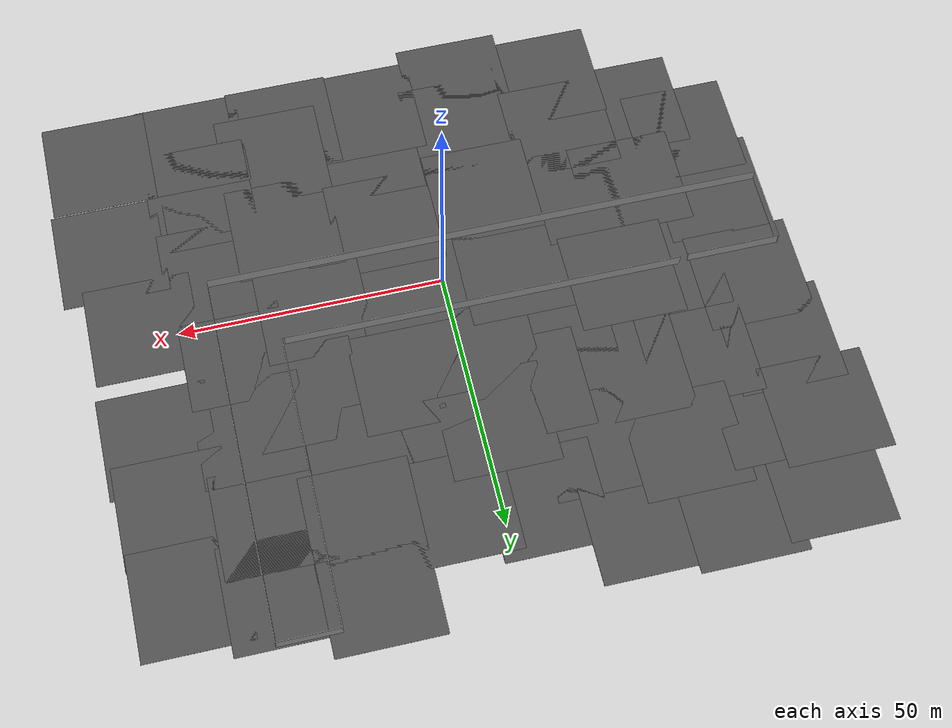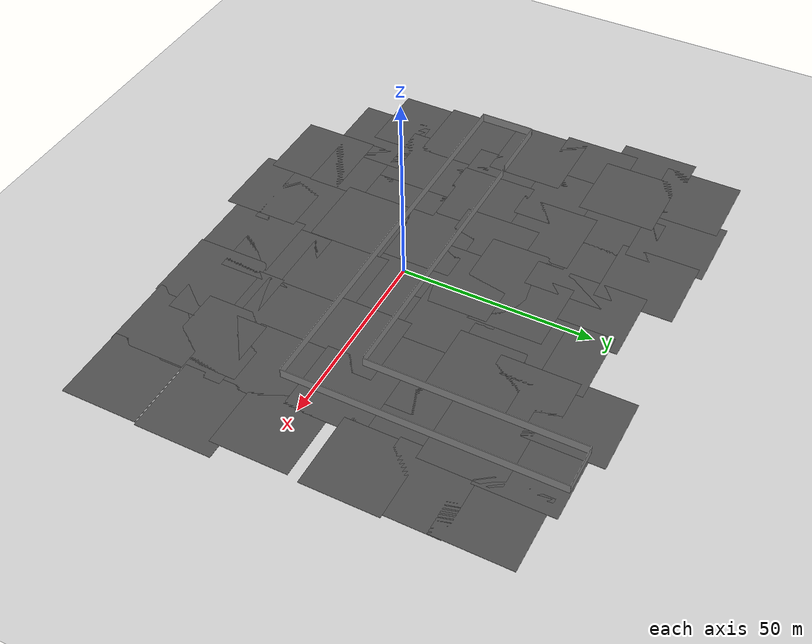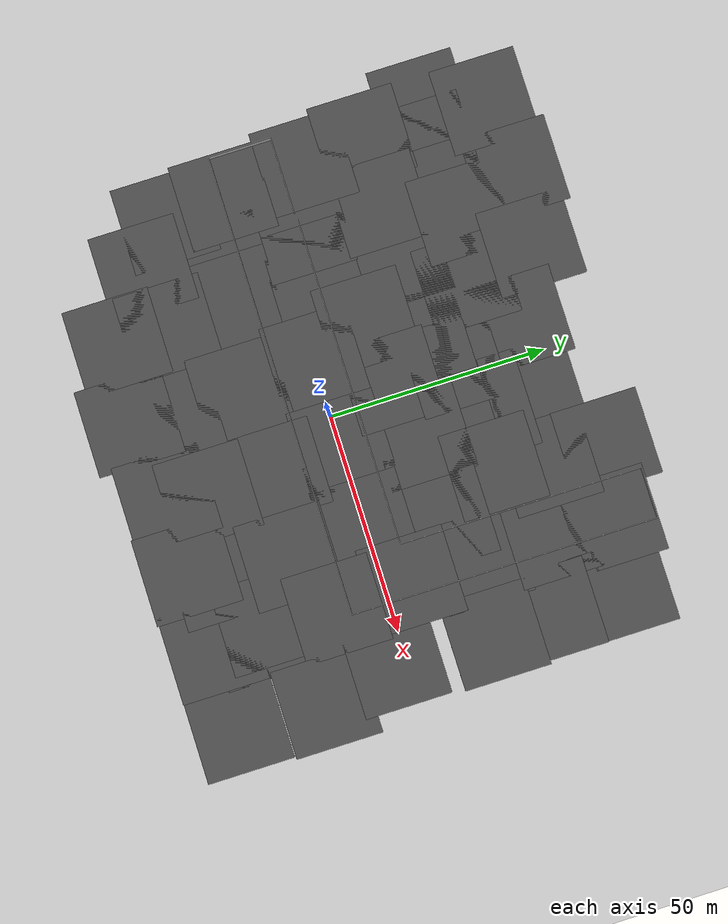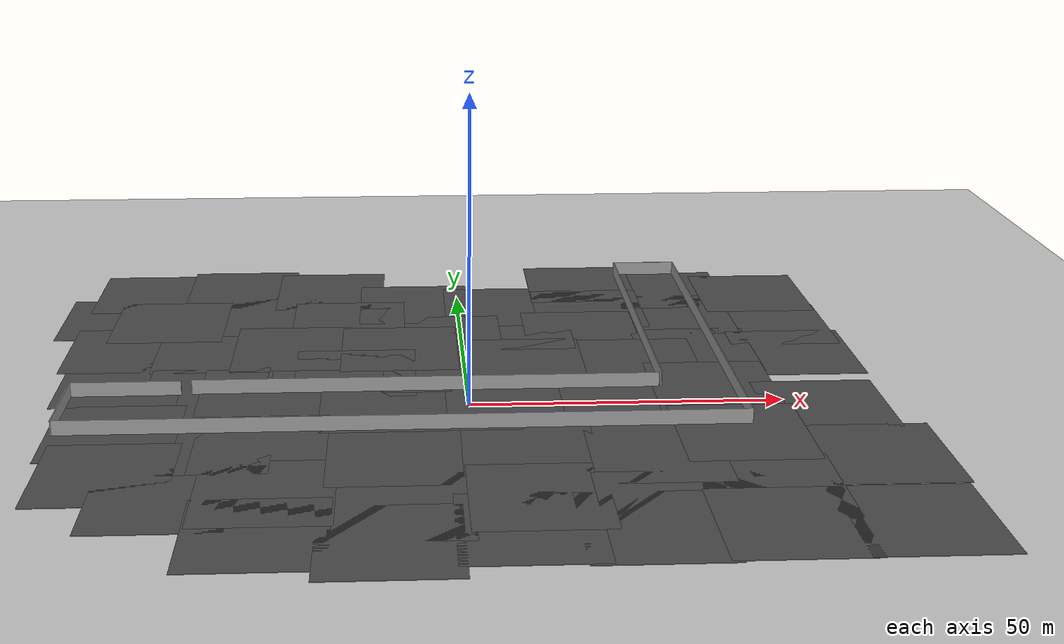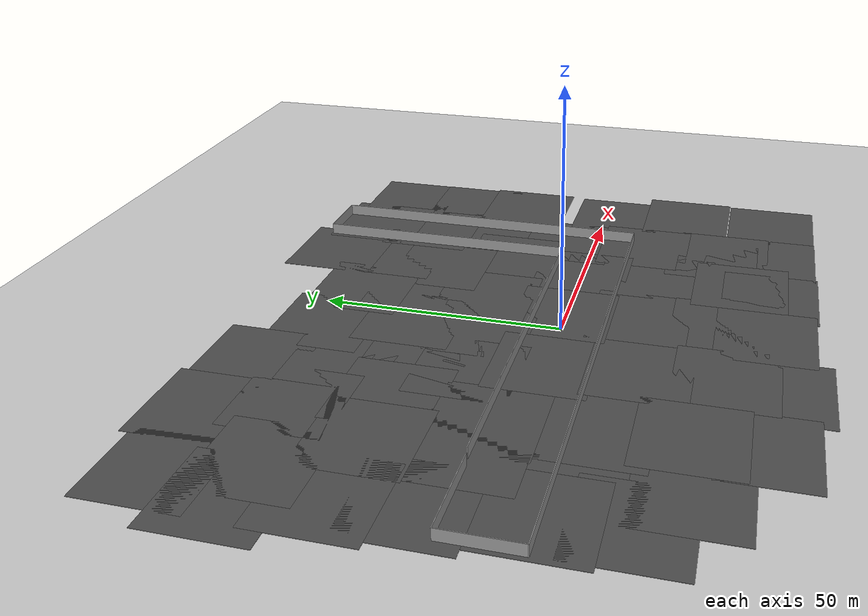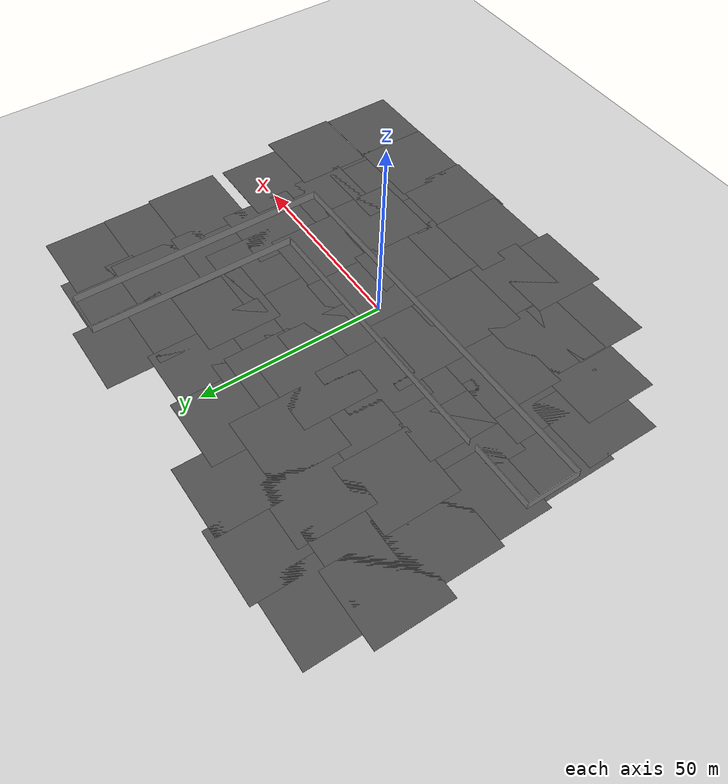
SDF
<sdf version="1.6">
 <world name="default">
  <light name="sun" type="directional">
   <pose>0 0 10 0 -0 0</pose>
   <diffuse>0.8 0.8 0.8 1</diffuse>
   <specular>0.1 0.1 0.1 1</specular>
   <attenuation>
    <range>1000</range>
    <constant>0.9</constant>
    <linear>0.01</linear>
    <quadratic>0.001</quadratic>
   </attenuation>
   <direction>-0.5 0.5 -1</direction>
  </light>
  <scene>
   <grid>0</grid>
   <origin_visual>0</origin_visual>
   <ambient>0.592 0.624 0.635 1</ambient>
   <sky><clouds><speed>12</speed></clouds></sky>
   <background>0.35 0.35 0.35 1</background>
   <shadows>1</shadows>
  </scene>
  <model name="ground_plane">
   <static>1</static>
   <link name="link">
    <collision name="collision">
     <geometry><plane><normal>0 0 1</normal><size>100 100</size></plane></geometry>
     <surface><friction><ode><mu>100</mu><mu2>50</mu2></ode></friction></surface>
    </collision>
    <visual name="visual">
     <cast_shadows>0</cast_shadows>
     <geometry><plane><normal>0 0 1</normal><size>100 100</size></plane></geometry>
     <material>
      <script><uri>file://media/materials/scripts/gazebo.material</uri><name>Gazebo/Grey</name></script>
     </material>
    </visual>
   </link>
  </model>
  <gravity>0 0 -9.8</gravity>
  <magnetic_field>6e-06 2.3e-05 -4.2e-05</magnetic_field>
  <atmosphere type="adiabatic"/>
  <physics name="default_physics" default="0" type="ode">
   <max_step_size>0.001</max_step_size>
   <real_time_factor>1</real_time_factor>
   <real_time_update_rate>1000</real_time_update_rate>
  </physics>
  <scene><ambient>0.4 0.4 0.4 1</ambient><background>0.7 0.7 0.7 1</background><shadows>1</shadows></scene>
  <spherical_coordinates>
   <surface_model>EARTH_WGS84</surface_model>
   <latitude_deg>0</latitude_deg>
   <longitude_deg>0</longitude_deg>
   <elevation>0</elevation>
   <heading_deg>0</heading_deg>
  </spherical_coordinates>
  <model name="asphalt_plane_0_clone_clone">
   <static>1</static>
   <link name="link">
    <collision name="collision"><geometry><box><size>20 20 0.1</size></box></geometry></collision>
    <visual name="visual">
     <cast_shadows>0</cast_shadows>
     <geometry><box><size>20 20 0.1</size></box></geometry>
     <material>
      <script>
       <uri>model://asphalt_plane/materials/scripts</uri>
       <uri>model://asphalt_plane/materials/textures</uri>
       <name>vrc/asphalt</name>
      </script>
     </material>
    </visual>
   </link>
   <pose>6.37821 0.583634 0 0 -0 0</pose>
  </model>
  <model name="asphalt_plane_0_clone_clone_0">
   <static>1</static>
   <link name="link">
    <collision name="collision"><geometry><box><size>20 20 0.1</size></box></geometry></collision>
    <visual name="visual">
     <cast_shadows>0</cast_shadows>
     <geometry><box><size>20 20 0.1</size></box></geometry>
     <material>
      <script>
       <uri>model://asphalt_plane/materials/scripts</uri>
       <uri>model://asphalt_plane/materials/textures</uri>
       <name>vrc/asphalt</name>
      </script>
     </material>
    </visual>
   </link>
   <pose>10.2031 18.113 0 0 -0 0</pose>
  </model>
  <model name="asphalt_plane_0_clone_clone_1">
   <static>1</static>
   <link name="link">
    <collision name="collision"><geometry><box><size>20 20 0.1</size></box></geometry></collision>
    <visual name="visual">
     <cast_shadows>0</cast_shadows>
     <geometry><box><size>20 20 0.1</size></box></geometry>
     <material>
      <script>
       <uri>model://asphalt_plane/materials/scripts</uri>
       <uri>model://asphalt_plane/materials/textures</uri>
       <name>vrc/asphalt</name>
      </script>
     </material>
    </visual>
   </link>
   <pose>24.8252 0.209919 0 0 -0 0</pose>
  </model>
  <model name="asphalt_plane_0_clone_clone_3">
   <static>1</static>
   <link name="link">
    <collision name="collision"><geometry><box><size>20 20 0.1</size></box></geometry></collision>
    <visual name="visual">
     <cast_shadows>0</cast_shadows>
     <geometry><box><size>20 20 0.1</size></box></geometry>
     <material>
      <script>
       <uri>model://asphalt_plane/materials/scripts</uri>
       <uri>model://asphalt_plane/materials/textures</uri>
       <name>vrc/asphalt</name>
      </script>
     </material>
    </visual>
   </link>
   <pose>8.11641 -15.0475 0 0 -0 0</pose>
  </model>
  <model name="asphalt_plane_0_clone_0">
   <static>1</static>
   <link name="link">
    <collision name="collision"><geometry><box><size>20 20 0.1</size></box></geometry></collision>
    <visual name="visual">
     <cast_shadows>0</cast_shadows>
     <geometry><box><size>20 20 0.1</size></box></geometry>
     <material>
      <script>
       <uri>model://asphalt_plane/materials/scripts</uri>
       <uri>model://asphalt_plane/materials/textures</uri>
       <name>vrc/asphalt</name>
      </script>
     </material>
    </visual>
   </link>
   <pose>-13.5558 0.477425 0 0 -0 0</pose>
  </model>
  <model name="asphalt_plane_0_clone_clone_1_clone">
   <static>1</static>
   <link name="link">
    <collision name="collision"><geometry><box><size>20 20 0.1</size></box></geometry></collision>
    <visual name="visual">
     <cast_shadows>0</cast_shadows>
     <geometry><box><size>20 20 0.1</size></box></geometry>
     <material>
      <script>
       <uri>model://asphalt_plane/materials/scripts</uri>
       <uri>model://asphalt_plane/materials/textures</uri>
       <name>vrc/asphalt</name>
      </script>
     </material>
    </visual>
   </link>
   <pose>26.888 -18.1786 0 0 -0 0</pose>
  </model>
  <model name="asphalt_plane_0_clone_clone_1_clone_0">
   <static>1</static>
   <link name="link">
    <collision name="collision"><geometry><box><size>20 20 0.1</size></box></geometry></collision>
    <visual name="visual">
     <cast_shadows>0</cast_shadows>
     <geometry><box><size>20 20 0.1</size></box></geometry>
     <material>
      <script>
       <uri>model://asphalt_plane/materials/scripts</uri>
       <uri>model://asphalt_plane/materials/textures</uri>
       <name>vrc/asphalt</name>
      </script>
     </material>
    </visual>
   </link>
   <pose>29.6101 17.2232 0 0 -0 0</pose>
  </model>
  <model name="asphalt_plane_0_clone_clone_1_clone_1">
   <static>1</static>
   <link name="link">
    <collision name="collision"><geometry><box><size>20 20 0.1</size></box></geometry></collision>
    <visual name="visual">
     <cast_shadows>0</cast_shadows>
     <geometry><box><size>20 20 0.1</size></box></geometry>
     <material>
      <script>
       <uri>model://asphalt_plane/materials/scripts</uri>
       <uri>model://asphalt_plane/materials/textures</uri>
       <name>vrc/asphalt</name>
      </script>
     </material>
    </visual>
   </link>
   <pose>40.1025 6.22208 0 0 -0 0</pose>
  </model>
  <model name="asphalt_plane_0_clone_clone_1_clone_2">
   <static>1</static>
   <link name="link">
    <collision name="collision"><geometry><box><size>20 20 0.1</size></box></geometry></collision>
    <visual name="visual">
     <cast_shadows>0</cast_shadows>
     <geometry><box><size>20 20 0.1</size></box></geometry>
     <material>
      <script>
       <uri>model://asphalt_plane/materials/scripts</uri>
       <uri>model://asphalt_plane/materials/textures</uri>
       <name>vrc/asphalt</name>
      </script>
     </material>
    </visual>
   </link>
   <pose>41.0911 -11.5315 0 0 -0 0</pose>
  </model>
  <model name="asphalt_plane_0_clone_clone_1_clone_3">
   <static>1</static>
   <link name="link">
    <collision name="collision"><geometry><box><size>20 20 0.1</size></box></geometry></collision>
    <visual name="visual">
     <cast_shadows>0</cast_shadows>
     <geometry><box><size>20 20 0.1</size></box></geometry>
     <material>
      <script>
       <uri>model://asphalt_plane/materials/scripts</uri>
       <uri>model://asphalt_plane/materials/textures</uri>
       <name>vrc/asphalt</name>
      </script>
     </material>
    </visual>
   </link>
   <pose>-31.7511 -12.9041 0 0 -0 0</pose>
  </model>
  <model name="asphalt_plane_0_clone_clone_1_clone_4">
   <static>1</static>
   <link name="link">
    <collision name="collision"><geometry><box><size>20 20 0.1</size></box></geometry></collision>
    <visual name="visual">
     <cast_shadows>0</cast_shadows>
     <geometry><box><size>20 20 0.1</size></box></geometry>
     <material>
      <script>
       <uri>model://asphalt_plane/materials/scripts</uri>
       <uri>model://asphalt_plane/materials/textures</uri>
       <name>vrc/asphalt</name>
      </script>
     </material>
    </visual>
   </link>
   <pose>-33.0894 6.09046 0 0 -0 0</pose>
  </model>
  <model name="asphalt_plane_0_clone_clone_1_clone_5">
   <static>1</static>
   <link name="link">
    <collision name="collision"><geometry><box><size>20 20 0.1</size></box></geometry></collision>
    <visual name="visual">
     <cast_shadows>0</cast_shadows>
     <geometry><box><size>20 20 0.1</size></box></geometry>
     <material>
      <script>
       <uri>model://asphalt_plane/materials/scripts</uri>
       <uri>model://asphalt_plane/materials/textures</uri>
       <name>vrc/asphalt</name>
      </script>
     </material>
    </visual>
   </link>
   <pose>-10.8691 24.6966 0 0 -0 0</pose>
  </model>
  <model name="asphalt_plane_0_clone_clone_1_clone_6">
   <static>1</static>
   <link name="link">
    <collision name="collision"><geometry><box><size>20 20 0.1</size></box></geometry></collision>
    <visual name="visual">
     <cast_shadows>0</cast_shadows>
     <geometry><box><size>20 20 0.1</size></box></geometry>
     <material>
      <script>
       <uri>model://asphalt_plane/materials/scripts</uri>
       <uri>model://asphalt_plane/materials/textures</uri>
       <name>vrc/asphalt</name>
      </script>
     </material>
    </visual>
   </link>
   <pose>-3 30 0 0 -0 0</pose>
  </model>
  <model name="asphalt_plane_0_clone_clone_1_clone_7">
   <static>1</static>
   <link name="link">
    <collision name="collision"><geometry><box><size>20 20 0.1</size></box></geometry></collision>
    <visual name="visual">
     <cast_shadows>0</cast_shadows>
     <geometry><box><size>20 20 0.1</size></box></geometry>
     <material>
      <script>
       <uri>model://asphalt_plane/materials/scripts</uri>
       <uri>model://asphalt_plane/materials/textures</uri>
       <name>vrc/asphalt</name>
      </script>
     </material>
    </visual>
   </link>
   <pose>-29.326 25.3742 0 0 -0 0</pose>
  </model>
  <model name="asphalt_plane_0_clone_clone_1_clone_8">
   <static>1</static>
   <link name="link">
    <collision name="collision"><geometry><box><size>20 20 0.1</size></box></geometry></collision>
    <visual name="visual">
     <cast_shadows>0</cast_shadows>
     <geometry><box><size>20 20 0.1</size></box></geometry>
     <material>
      <script>
       <uri>model://asphalt_plane/materials/scripts</uri>
       <uri>model://asphalt_plane/materials/textures</uri>
       <name>vrc/asphalt</name>
      </script>
     </material>
    </visual>
   </link>
   <pose>40.2279 21.9338 0 0 -0 0</pose>
  </model>
  <model name="asphalt_plane_0_clone_clone_1_clone_9">
   <static>1</static>
   <link name="link">
    <collision name="collision"><geometry><box><size>20 20 0.1</size></box></geometry></collision>
    <visual name="visual">
     <cast_shadows>0</cast_shadows>
     <geometry><box><size>20 20 0.1</size></box></geometry>
     <material>
      <script>
       <uri>model://asphalt_plane/materials/scripts</uri>
       <uri>model://asphalt_plane/materials/textures</uri>
       <name>vrc/asphalt</name>
      </script>
     </material>
    </visual>
   </link>
   <pose>21.4043 31.4114 0 0 -0 0</pose>
  </model>
  <model name="asphalt_plane_0_clone_clone_1_clone_3_clone">
   <static>1</static>
   <link name="link">
    <collision name="collision"><geometry><box><size>20 20 0.1</size></box></geometry></collision>
    <visual name="visual">
     <cast_shadows>0</cast_shadows>
     <geometry><box><size>20 20 0.1</size></box></geometry>
     <material>
      <script>
       <uri>model://asphalt_plane/materials/scripts</uri>
       <uri>model://asphalt_plane/materials/textures</uri>
       <name>vrc/asphalt</name>
      </script>
     </material>
    </visual>
   </link>
   <pose>-11.8014 -17.5637 0 0 -0 0</pose>
  </model>
  <model name="asphalt_plane_0_clone_clone_1_clone_3_clone_0">
   <static>1</static>
   <link name="link">
    <collision name="collision"><geometry><box><size>20 20 0.1</size></box></geometry></collision>
    <visual name="visual">
     <cast_shadows>0</cast_shadows>
     <geometry><box><size>20 20 0.1</size></box></geometry>
     <material>
      <script>
       <uri>model://asphalt_plane/materials/scripts</uri>
       <uri>model://asphalt_plane/materials/textures</uri>
       <name>vrc/asphalt</name>
      </script>
     </material>
    </visual>
   </link>
   <pose>41.4998 -29.7064 0 0 -0 0</pose>
  </model>
  <model name="asphalt_plane_0_clone_clone_1_clone_3_clone_1">
   <static>1</static>
   <link name="link">
    <collision name="collision"><geometry><box><size>20 20 0.1</size></box></geometry></collision>
    <visual name="visual">
     <cast_shadows>0</cast_shadows>
     <geometry><box><size>20 20 0.1</size></box></geometry>
     <material>
      <script>
       <uri>model://asphalt_plane/materials/scripts</uri>
       <uri>model://asphalt_plane/materials/textures</uri>
       <name>vrc/asphalt</name>
      </script>
     </material>
    </visual>
   </link>
   <pose>26.1918 -34.3701 0 0 -0 0</pose>
  </model>
  <model name="asphalt_plane_0_clone_clone_1_clone_3_clone_2">
   <static>1</static>
   <link name="link">
    <collision name="collision"><geometry><box><size>20 20 0.1</size></box></geometry></collision>
    <visual name="visual">
     <cast_shadows>0</cast_shadows>
     <geometry><box><size>20 20 0.1</size></box></geometry>
     <material>
      <script>
       <uri>model://asphalt_plane/materials/scripts</uri>
       <uri>model://asphalt_plane/materials/textures</uri>
       <name>vrc/asphalt</name>
      </script>
     </material>
    </visual>
   </link>
   <pose>41.1356 -40.2 0 0 -0 0</pose>
  </model>
  <model name="asphalt_plane_0_clone_clone_1_clone_3_clone_3">
   <static>1</static>
   <link name="link">
    <collision name="collision"><geometry><box><size>20 20 0.1</size></box></geometry></collision>
    <visual name="visual">
     <cast_shadows>0</cast_shadows>
     <geometry><box><size>20 20 0.1</size></box></geometry>
     <material>
      <script>
       <uri>model://asphalt_plane/materials/scripts</uri>
       <uri>model://asphalt_plane/materials/textures</uri>
       <name>vrc/asphalt</name>
      </script>
     </material>
    </visual>
   </link>
   <pose>22.9353 -40.6198 0 0 -0 0</pose>
  </model>
  <model name="asphalt_plane_0_clone_clone_1_clone_3_clone_4">
   <static>1</static>
   <link name="link">
    <collision name="collision"><geometry><box><size>20 20 0.1</size></box></geometry></collision>
    <visual name="visual">
     <cast_shadows>0</cast_shadows>
     <geometry><box><size>20 20 0.1</size></box></geometry>
     <material>
      <script>
       <uri>model://asphalt_plane/materials/scripts</uri>
       <uri>model://asphalt_plane/materials/textures</uri>
       <name>vrc/asphalt</name>
      </script>
     </material>
    </visual>
   </link>
   <pose>8.35018 -31.2659 0 0 -0 0</pose>
  </model>
  <model name="asphalt_plane_0_clone_clone_1_clone_3_clone_5">
   <static>1</static>
   <link name="link">
    <collision name="collision"><geometry><box><size>20 20 0.1</size></box></geometry></collision>
    <visual name="visual">
     <cast_shadows>0</cast_shadows>
     <geometry><box><size>20 20 0.1</size></box></geometry>
     <material>
      <script>
       <uri>model://asphalt_plane/materials/scripts</uri>
       <uri>model://asphalt_plane/materials/textures</uri>
       <name>vrc/asphalt</name>
      </script>
     </material>
    </visual>
   </link>
   <pose>6.27442 -40.183 0 0 -0 0</pose>
  </model>
  <model name="asphalt_plane_0_clone_clone_1_clone_3_clone_6">
   <static>1</static>
   <link name="link">
    <collision name="collision"><geometry><box><size>20 20 0.1</size></box></geometry></collision>
    <visual name="visual">
     <cast_shadows>0</cast_shadows>
     <geometry><box><size>20 20 0.1</size></box></geometry>
     <material>
      <script>
       <uri>model://asphalt_plane/materials/scripts</uri>
       <uri>model://asphalt_plane/materials/textures</uri>
       <name>vrc/asphalt</name>
      </script>
     </material>
    </visual>
   </link>
   <pose>-10.7792 -33.517 0 0 -0 0</pose>
  </model>
  <model name="asphalt_plane_0_clone_clone_1_clone_3_clone_7">
   <static>1</static>
   <link name="link">
    <collision name="collision"><geometry><box><size>20 20 0.1</size></box></geometry></collision>
    <visual name="visual">
     <cast_shadows>0</cast_shadows>
     <geometry><box><size>20 20 0.1</size></box></geometry>
     <material>
      <script>
       <uri>model://asphalt_plane/materials/scripts</uri>
       <uri>model://asphalt_plane/materials/textures</uri>
       <name>vrc/asphalt</name>
      </script>
     </material>
    </visual>
   </link>
   <pose>-29.9691 -28.748 0 0 -0 0</pose>
  </model>
  <model name="asphalt_plane_0_clone_clone_1_clone_3_clone_8">
   <static>1</static>
   <link name="link">
    <collision name="collision"><geometry><box><size>20 20 0.1</size></box></geometry></collision>
    <visual name="visual">
     <cast_shadows>0</cast_shadows>
     <geometry><box><size>20 20 0.1</size></box></geometry>
     <material>
      <script>
       <uri>model://asphalt_plane/materials/scripts</uri>
       <uri>model://asphalt_plane/materials/textures</uri>
       <name>vrc/asphalt</name>
      </script>
     </material>
    </visual>
   </link>
   <pose>-30.2733 -40.503 0 0 -0 0</pose>
  </model>
  <model name="asphalt_plane_0_clone_clone_1_clone_3_clone_9">
   <static>1</static>
   <link name="link">
    <collision name="collision"><geometry><box><size>20 20 0.1</size></box></geometry></collision>
    <visual name="visual">
     <cast_shadows>0</cast_shadows>
     <geometry><box><size>20 20 0.1</size></box></geometry>
     <material>
      <script>
       <uri>model://asphalt_plane/materials/scripts</uri>
       <uri>model://asphalt_plane/materials/textures</uri>
       <name>vrc/asphalt</name>
      </script>
     </material>
    </visual>
   </link>
   <pose>-12.4234 -43.1011 0 0 -0 0</pose>
  </model>
  <model name="asphalt_plane_0_clone_clone_1_clone_3_clone_10">
   <static>1</static>
   <link name="link">
    <collision name="collision"><geometry><box><size>20 20 0.1</size></box></geometry></collision>
    <visual name="visual">
     <cast_shadows>0</cast_shadows>
     <geometry><box><size>20 20 0.1</size></box></geometry>
     <material>
      <script>
       <uri>model://asphalt_plane/materials/scripts</uri>
       <uri>model://asphalt_plane/materials/textures</uri>
       <name>vrc/asphalt</name>
      </script>
     </material>
    </visual>
   </link>
   <pose>-39.914 -12.9126 0 0 -0 0</pose>
  </model>
  <model name="asphalt_plane_0_clone_clone_1_clone_3_clone_11">
   <static>1</static>
   <link name="link">
    <collision name="collision"><geometry><box><size>20 20 0.1</size></box></geometry></collision>
    <visual name="visual">
     <cast_shadows>0</cast_shadows>
     <geometry><box><size>20 20 0.1</size></box></geometry>
     <material>
      <script>
       <uri>model://asphalt_plane/materials/scripts</uri>
       <uri>model://asphalt_plane/materials/textures</uri>
       <name>vrc/asphalt</name>
      </script>
     </material>
    </visual>
   </link>
   <pose>39.7398 39.4432 0 0 -0 0</pose>
  </model>
  <model name="asphalt_plane_0_clone_clone_1_clone_3_clone_12">
   <static>1</static>
   <link name="link">
    <collision name="collision"><geometry><box><size>20 20 0.1</size></box></geometry></collision>
    <visual name="visual">
     <cast_shadows>0</cast_shadows>
     <geometry><box><size>20 20 0.1</size></box></geometry>
     <material>
      <script>
       <uri>model://asphalt_plane/materials/scripts</uri>
       <uri>model://asphalt_plane/materials/textures</uri>
       <name>vrc/asphalt</name>
      </script>
     </material>
    </visual>
   </link>
   <pose>-41.9881 6.39224 0 0 -0 0</pose>
  </model>
  <model name="asphalt_plane_0_clone_clone_1_clone_3_clone_13">
   <static>1</static>
   <link name="link">
    <collision name="collision"><geometry><box><size>20 20 0.1</size></box></geometry></collision>
    <visual name="visual">
     <cast_shadows>0</cast_shadows>
     <geometry><box><size>20 20 0.1</size></box></geometry>
     <material>
      <script>
       <uri>model://asphalt_plane/materials/scripts</uri>
       <uri>model://asphalt_plane/materials/textures</uri>
       <name>vrc/asphalt</name>
      </script>
     </material>
    </visual>
   </link>
   <pose>-42.5242 24.9399 0 0 -0 0</pose>
  </model>
  <model name="asphalt_plane_0_clone_clone_1_clone_3_clone_14">
   <static>1</static>
   <link name="link">
    <collision name="collision"><geometry><box><size>20 20 0.1</size></box></geometry></collision>
    <visual name="visual">
     <cast_shadows>0</cast_shadows>
     <geometry><box><size>20 20 0.1</size></box></geometry>
     <material>
      <script>
       <uri>model://asphalt_plane/materials/scripts</uri>
       <uri>model://asphalt_plane/materials/textures</uri>
       <name>vrc/asphalt</name>
      </script>
     </material>
    </visual>
   </link>
   <pose>-19.9765 38.1058 0 0 -0 0</pose>
  </model>
  <model name="asphalt_plane_0_clone_clone_1_clone_3_clone_15">
   <static>1</static>
   <link name="link">
    <collision name="collision"><geometry><box><size>20 20 0.1</size></box></geometry></collision>
    <visual name="visual">
     <cast_shadows>0</cast_shadows>
     <geometry><box><size>20 20 0.1</size></box></geometry>
     <material>
      <script>
       <uri>model://asphalt_plane/materials/scripts</uri>
       <uri>model://asphalt_plane/materials/textures</uri>
       <name>vrc/asphalt</name>
      </script>
     </material>
    </visual>
   </link>
   <pose>38.8642 -27.432 0 0 -0 0</pose>
  </model>
  <model name="asphalt_plane_0_clone_clone_1_clone_3_clone_11_clone">
   <static>1</static>
   <link name="link">
    <collision name="collision"><geometry><box><size>20 20 0.1</size></box></geometry></collision>
    <visual name="visual">
     <cast_shadows>0</cast_shadows>
     <geometry><box><size>20 20 0.1</size></box></geometry>
     <material>
      <script>
       <uri>model://asphalt_plane/materials/scripts</uri>
       <uri>model://asphalt_plane/materials/textures</uri>
       <name>vrc/asphalt</name>
      </script>
     </material>
    </visual>
   </link>
   <pose>24.1835 43.1447 0 0 -0 0</pose>
  </model>
  <model name="asphalt_plane_0_clone_clone_1_clone_3_clone_11_clone_0">
   <static>1</static>
   <link name="link">
    <collision name="collision"><geometry><box><size>20 20 0.1</size></box></geometry></collision>
    <visual name="visual">
     <cast_shadows>0</cast_shadows>
     <geometry><box><size>20 20 0.1</size></box></geometry>
     <material>
      <script>
       <uri>model://asphalt_plane/materials/scripts</uri>
       <uri>model://asphalt_plane/materials/textures</uri>
       <name>vrc/asphalt</name>
      </script>
     </material>
    </visual>
   </link>
   <pose>40.5649 52.9156 0 0 -0 0</pose>
  </model>
  <model name="asphalt_plane_0_clone_clone_1_clone_3_clone_11_clone_1">
   <static>1</static>
   <link name="link">
    <collision name="collision"><geometry><box><size>20 20 0.1</size></box></geometry></collision>
    <visual name="visual">
     <cast_shadows>0</cast_shadows>
     <geometry><box><size>20 20 0.1</size></box></geometry>
     <material>
      <script>
       <uri>model://asphalt_plane/materials/scripts</uri>
       <uri>model://asphalt_plane/materials/textures</uri>
       <name>vrc/asphalt</name>
      </script>
     </material>
    </visual>
   </link>
   <pose>7.57971 44.8403 0 0 -0 0</pose>
  </model>
  <model name="asphalt_plane_0_clone_clone_1_clone_3_clone_11_clone_0_clone">
   <static>1</static>
   <link name="link">
    <collision name="collision"><geometry><box><size>20 20 0.1</size></box></geometry></collision>
    <visual name="visual">
     <cast_shadows>0</cast_shadows>
     <geometry><box><size>20 20 0.1</size></box></geometry>
     <material>
      <script>
       <uri>model://asphalt_plane/materials/scripts</uri>
       <uri>model://asphalt_plane/materials/textures</uri>
       <name>vrc/asphalt</name>
      </script>
     </material>
    </visual>
   </link>
   <pose>24.047 56.8673 0 0 -0 0</pose>
  </model>
  <model name="asphalt_plane_1">
   <static>1</static>
   <link name="link">
    <collision name="collision"><geometry><box><size>20 20 0.1</size></box></geometry></collision>
    <visual name="visual">
     <cast_shadows>0</cast_shadows>
     <geometry><box><size>20 20 0.1</size></box></geometry>
     <material>
      <script>
       <uri>model://asphalt_plane/materials/scripts</uri>
       <uri>model://asphalt_plane/materials/textures</uri>
       <name>vrc/asphalt</name>
      </script>
     </material>
    </visual>
   </link>
   <pose>60.0043 -19.8285 0 0 -0 0</pose>
  </model>
  <model name="asphalt_plane_1_clone">
   <static>1</static>
   <link name="link">
    <collision name="collision"><geometry><box><size>20 20 0.1</size></box></geometry></collision>
    <visual name="visual">
     <cast_shadows>0</cast_shadows>
     <geometry><box><size>20 20 0.1</size></box></geometry>
     <material>
      <script>
       <uri>model://asphalt_plane/materials/scripts</uri>
       <uri>model://asphalt_plane/materials/textures</uri>
       <name>vrc/asphalt</name>
      </script>
     </material>
    </visual>
   </link>
   <pose>56.9752 20.2287 0 0 -0 0</pose>
  </model>
  <model name="asphalt_plane_1_clone_0">
   <static>1</static>
   <link name="link">
    <collision name="collision"><geometry><box><size>20 20 0.1</size></box></geometry></collision>
    <visual name="visual">
     <cast_shadows>0</cast_shadows>
     <geometry><box><size>20 20 0.1</size></box></geometry>
     <material>
      <script>
       <uri>model://asphalt_plane/materials/scripts</uri>
       <uri>model://asphalt_plane/materials/textures</uri>
       <name>vrc/asphalt</name>
      </script>
     </material>
    </visual>
   </link>
   <pose>56.1858 33.8725 0 0 -0 0</pose>
  </model>
  <model name="asphalt_plane_1_clone_1">
   <static>1</static>
   <link name="link">
    <collision name="collision"><geometry><box><size>20 20 0.1</size></box></geometry></collision>
    <visual name="visual">
     <cast_shadows>0</cast_shadows>
     <geometry><box><size>20 20 0.1</size></box></geometry>
     <material>
      <script>
       <uri>model://asphalt_plane/materials/scripts</uri>
       <uri>model://asphalt_plane/materials/textures</uri>
       <name>vrc/asphalt</name>
      </script>
     </material>
    </visual>
   </link>
   <pose>56.0408 50.4969 0 0 -0 0</pose>
  </model>
  <model name="asphalt_plane_1_clone_2">
   <static>1</static>
   <link name="link">
    <collision name="collision"><geometry><box><size>20 20 0.1</size></box></geometry></collision>
    <visual name="visual">
     <cast_shadows>0</cast_shadows>
     <geometry><box><size>20 20 0.1</size></box></geometry>
     <material>
      <script>
       <uri>model://asphalt_plane/materials/scripts</uri>
       <uri>model://asphalt_plane/materials/textures</uri>
       <name>vrc/asphalt</name>
      </script>
     </material>
    </visual>
   </link>
   <pose>56.2979 -2.61646 0 0 -0 0</pose>
  </model>
  <model name="asphalt_plane_0_clone_clone_1_clone_3_clone_2_clone">
   <static>1</static>
   <link name="link">
    <collision name="collision"><geometry><box><size>20 20 0.1</size></box></geometry></collision>
    <visual name="visual">
     <cast_shadows>0</cast_shadows>
     <geometry><box><size>20 20 0.1</size></box></geometry>
     <material>
      <script>
       <uri>model://asphalt_plane/materials/scripts</uri>
       <uri>model://asphalt_plane/materials/textures</uri>
       <name>vrc/asphalt</name>
      </script>
     </material>
    </visual>
   </link>
   <pose>59.3685 -40.0699 0 0 -0 0</pose>
  </model>
  <model name="asphalt_plane_0_clone_clone_1_clone_3_clone_12_clone">
   <static>1</static>
   <link name="link">
    <collision name="collision"><geometry><box><size>20 20 0.1</size></box></geometry></collision>
    <visual name="visual">
     <cast_shadows>0</cast_shadows>
     <geometry><box><size>20 20 0.1</size></box></geometry>
     <material>
      <script>
       <uri>model://asphalt_plane/materials/scripts</uri>
       <uri>model://asphalt_plane/materials/textures</uri>
       <name>vrc/asphalt</name>
      </script>
     </material>
    </visual>
   </link>
   <pose>-44.401 -30.0859 0 0 -0 0</pose>
  </model>
  <model name="asphalt_plane_0_clone_clone_1_clone_3_clone_12_clone_0">
   <static>1</static>
   <link name="link">
    <collision name="collision"><geometry><box><size>20 20 0.1</size></box></geometry></collision>
    <visual name="visual">
     <cast_shadows>0</cast_shadows>
     <geometry><box><size>20 20 0.1</size></box></geometry>
     <material>
      <script>
       <uri>model://asphalt_plane/materials/scripts</uri>
       <uri>model://asphalt_plane/materials/textures</uri>
       <name>vrc/asphalt</name>
      </script>
     </material>
    </visual>
   </link>
   <pose>-52.1037 39.1152 0 0 -0 0</pose>
  </model>
  <model name="asphalt_plane_0_clone_clone_1_clone_3_clone_12_clone_1">
   <static>1</static>
   <link name="link">
    <collision name="collision"><geometry><box><size>20 20 0.1</size></box></geometry></collision>
    <visual name="visual">
     <cast_shadows>0</cast_shadows>
     <geometry><box><size>20 20 0.1</size></box></geometry>
     <material>
      <script>
       <uri>model://asphalt_plane/materials/scripts</uri>
       <uri>model://asphalt_plane/materials/textures</uri>
       <name>vrc/asphalt</name>
      </script>
     </material>
    </visual>
   </link>
   <pose>-8.09974 46.8393 0 0 -0 0</pose>
  </model>
  <model name="asphalt_plane_0_clone_clone_1_clone_3_clone_12_clone_2">
   <static>1</static>
   <link name="link">
    <collision name="collision"><geometry><box><size>20 20 0.1</size></box></geometry></collision>
    <visual name="visual">
     <cast_shadows>0</cast_shadows>
     <geometry><box><size>20 20 0.1</size></box></geometry>
     <material>
      <script>
       <uri>model://asphalt_plane/materials/scripts</uri>
       <uri>model://asphalt_plane/materials/textures</uri>
       <name>vrc/asphalt</name>
      </script>
     </material>
    </visual>
   </link>
   <pose>-23.7655 54.632 0 0 -0 0</pose>
  </model>
  <model name="asphalt_plane_0_clone_clone_1_clone_3_clone_12_clone_3">
   <static>1</static>
   <link name="link">
    <collision name="collision"><geometry><box><size>20 20 0.1</size></box></geometry></collision>
    <visual name="visual">
     <cast_shadows>0</cast_shadows>
     <geometry><box><size>20 20 0.1</size></box></geometry>
     <material>
      <script>
       <uri>model://asphalt_plane/materials/scripts</uri>
       <uri>model://asphalt_plane/materials/textures</uri>
       <name>vrc/asphalt</name>
      </script>
     </material>
    </visual>
   </link>
   <pose>-57.8809 25.5762 0 0 -0 0</pose>
  </model>
  <model name="asphalt_plane_0_clone_clone_1_clone_3_clone_12_clone_4">
   <static>1</static>
   <link name="link">
    <collision name="collision"><geometry><box><size>20 20 0.1</size></box></geometry></collision>
    <visual name="visual">
     <cast_shadows>0</cast_shadows>
     <geometry><box><size>20 20 0.1</size></box></geometry>
     <material>
      <script>
       <uri>model://asphalt_plane/materials/scripts</uri>
       <uri>model://asphalt_plane/materials/textures</uri>
       <name>vrc/asphalt</name>
      </script>
     </material>
    </visual>
   </link>
   <pose>-54.5213 -8.16502 0 0 -0 0</pose>
  </model>
  <model name="asphalt_plane_0_clone_clone_1_clone_3_clone_12_clone_5">
   <static>1</static>
   <link name="link">
    <collision name="collision"><geometry><box><size>20 20 0.1</size></box></geometry></collision>
    <visual name="visual">
     <cast_shadows>0</cast_shadows>
     <geometry><box><size>20 20 0.1</size></box></geometry>
     <material>
      <script>
       <uri>model://asphalt_plane/materials/scripts</uri>
       <uri>model://asphalt_plane/materials/textures</uri>
       <name>vrc/asphalt</name>
      </script>
     </material>
    </visual>
   </link>
   <pose>-53.3933 -22.1091 0 0 -0 0</pose>
  </model>
  <model name="asphalt_plane_0_clone_clone_1_clone_3_clone_12_clone_6">
   <static>1</static>
   <link name="link">
    <collision name="collision"><geometry><box><size>20 20 0.1</size></box></geometry></collision>
    <visual name="visual">
     <cast_shadows>0</cast_shadows>
     <geometry><box><size>20 20 0.1</size></box></geometry>
     <material>
      <script>
       <uri>model://asphalt_plane/materials/scripts</uri>
       <uri>model://asphalt_plane/materials/textures</uri>
       <name>vrc/asphalt</name>
      </script>
     </material>
    </visual>
   </link>
   <pose>-40.7343 56.2327 0 0 -0 0</pose>
  </model>
  <model name="asphalt_plane_0_clone_clone_1_clone_3_clone_12_clone_7">
   <static>1</static>
   <link name="link">
    <collision name="collision"><geometry><box><size>20 20 0.1</size></box></geometry></collision>
    <visual name="visual">
     <cast_shadows>0</cast_shadows>
     <geometry><box><size>20 20 0.1</size></box></geometry>
     <material>
      <script>
       <uri>model://asphalt_plane/materials/scripts</uri>
       <uri>model://asphalt_plane/materials/textures</uri>
       <name>vrc/asphalt</name>
      </script>
     </material>
    </visual>
   </link>
   <pose>-57.6009 54.3864 0 0 -0 0</pose>
  </model>
  <model name="asphalt_plane_0_clone_clone_1_clone_3_clone_12_clone_8">
   <static>1</static>
   <link name="link">
    <collision name="collision"><geometry><box><size>20 20 0.1</size></box></geometry></collision>
    <visual name="visual">
     <cast_shadows>0</cast_shadows>
     <geometry><box><size>20 20 0.1</size></box></geometry>
     <material>
      <script>
       <uri>model://asphalt_plane/materials/scripts</uri>
       <uri>model://asphalt_plane/materials/textures</uri>
       <name>vrc/asphalt</name>
      </script>
     </material>
    </visual>
   </link>
   <pose>-61.6017 40.7819 0 0 -0 0</pose>
  </model>
  <model name="asphalt_plane_0_clone_clone_1_clone_3_clone_12_clone_9">
   <static>1</static>
   <link name="link">
    <collision name="collision"><geometry><box><size>20 20 0.1</size></box></geometry></collision>
    <visual name="visual">
     <cast_shadows>0</cast_shadows>
     <geometry><box><size>20 20 0.1</size></box></geometry>
     <material>
      <script>
       <uri>model://asphalt_plane/materials/scripts</uri>
       <uri>model://asphalt_plane/materials/textures</uri>
       <name>vrc/asphalt</name>
      </script>
     </material>
    </visual>
   </link>
   <pose>-56.3463 11.4452 0 0 -0 0</pose>
  </model>
  <model name="asphalt_plane_0_clone_clone_1_clone_3_clone_12_clone_10">
   <static>1</static>
   <link name="link">
    <collision name="collision"><geometry><box><size>20 20 0.1</size></box></geometry></collision>
    <visual name="visual">
     <cast_shadows>0</cast_shadows>
     <geometry><box><size>20 20 0.1</size></box></geometry>
     <material>
      <script>
       <uri>model://asphalt_plane/materials/scripts</uri>
       <uri>model://asphalt_plane/materials/textures</uri>
       <name>vrc/asphalt</name>
      </script>
     </material>
    </visual>
   </link>
   <pose>-35.3107 41.6902 0 0 -0 0</pose>
  </model>
  <model name="asphalt_plane_0_clone_clone_1_clone_3_clone_12_clone_11">
   <static>1</static>
   <link name="link">
    <collision name="collision"><geometry><box><size>20 20 0.1</size></box></geometry></collision>
    <visual name="visual">
     <cast_shadows>0</cast_shadows>
     <geometry><box><size>20 20 0.1</size></box></geometry>
     <material>
      <script>
       <uri>model://asphalt_plane/materials/scripts</uri>
       <uri>model://asphalt_plane/materials/textures</uri>
       <name>vrc/asphalt</name>
      </script>
     </material>
    </visual>
   </link>
   <pose>-18.2728 14.0458 0 0 -0 0</pose>
  </model>
  <model name="asphalt_plane_0_clone_clone_0_clone">
   <static>1</static>
   <link name="link">
    <collision name="collision"><geometry><box><size>20 20 0.1</size></box></geometry></collision>
    <visual name="visual">
     <cast_shadows>0</cast_shadows>
     <geometry><box><size>20 20 0.1</size></box></geometry>
     <material>
      <script>
       <uri>model://asphalt_plane/materials/scripts</uri>
       <uri>model://asphalt_plane/materials/textures</uri>
       <name>vrc/asphalt</name>
      </script>
     </material>
    </visual>
   </link>
   <pose>-3.69945 15.5035 0 0 -0 0</pose>
  </model>
  <model name="asphalt_plane_0_clone_clone_0_clone_0">
   <static>1</static>
   <link name="link">
    <collision name="collision"><geometry><box><size>20 20 0.1</size></box></geometry></collision>
    <visual name="visual">
     <cast_shadows>0</cast_shadows>
     <geometry><box><size>20 20 0.1</size></box></geometry>
     <material>
      <script>
       <uri>model://asphalt_plane/materials/scripts</uri>
       <uri>model://asphalt_plane/materials/textures</uri>
       <name>vrc/asphalt</name>
      </script>
     </material>
    </visual>
   </link>
   <pose>9.70035 33.3645 0 0 -0 0</pose>
  </model>
  <model name="walls">
   <pose>-10.1809 26.9254 0 0 -0 0</pose>
   <link name="Wall_10">
    <collision name="Wall_10_Collision">
     <geometry><box><size>14.75 0.15 2.5</size></box></geometry>
     <pose>0 0 1.25 0 -0 0</pose>
    </collision>
    <visual name="Wall_10_Visual">
     <pose>0 0 1.25 0 -0 0</pose>
     <geometry><box><size>14.75 0.15 2.5</size></box></geometry>
     <material>
      <script><uri>file://media/materials/scripts/gazebo.material</uri><name>Gazebo/Grey</name></script>
      <ambient>1 1 1 1</ambient>
     </material>
     <meta><layer>0</layer></meta>
    </visual>
    <pose>-53.425 -28.25 0 0 -0 1.5708</pose>
   </link>
   <link name="Wall_11">
    <collision name="Wall_11_Collision">
     <geometry><box><size>17.75 0.15 2.5</size></box></geometry>
     <pose>0 0 1.25 0 -0 0</pose>
    </collision>
    <visual name="Wall_11_Visual">
     <pose>0 0 1.25 0 -0 0</pose>
     <geometry><box><size>17.75 0.15 2.5</size></box></geometry>
     <material>
      <script><uri>file://media/materials/scripts/gazebo.material</uri><name>Gazebo/Grey</name></script>
      <ambient>1 1 1 1</ambient>
     </material>
     <meta><layer>0</layer></meta>
    </visual>
    <pose>-44.625 -20.95 0 0 -0 0</pose>
   </link>
   <link name="Wall_4">
    <collision name="Wall_4_Collision">
     <geometry><box><size>75.5 0.15 2.5</size></box></geometry>
     <pose>0 0 1.25 0 -0 0</pose>
    </collision>
    <visual name="Wall_4_Visual">
     <pose>0 0 1.25 0 -0 0</pose>
     <geometry><box><size>75.5 0.15 2.5</size></box></geometry>
     <material>
      <script><uri>file://media/materials/scripts/gazebo.material</uri><name>Gazebo/Grey</name></script>
      <ambient>1 1 1 1</ambient>
     </material>
     <meta><layer>0</layer></meta>
    </visual>
    <pose>3.65782 -20.6444 0 0 -0 0</pose>
   </link>
   <link name="Wall_6">
    <collision name="Wall_6_Collision">
     <geometry><box><size>56.25 0.15 2.5</size></box></geometry>
     <pose>0 0 1.25 0 -0 0</pose>
    </collision>
    <visual name="Wall_6_Visual">
     <pose>0 0 1.25 0 -0 0</pose>
     <geometry><box><size>56.25 0.15 2.5</size></box></geometry>
     <material>
      <script><uri>file://media/materials/scripts/gazebo.material</uri><name>Gazebo/Grey</name></script>
      <ambient>1 1 1 1</ambient>
     </material>
     <meta><layer>0</layer></meta>
    </visual>
    <pose>41.825 7.5 0 0 -0 1.5708</pose>
   </link>
   <link name="Wall_7">
    <collision name="Wall_7_Collision">
     <geometry><box><size>11.75 0.15 2.5</size></box></geometry>
     <pose>0 0 1.25 0 -0 0</pose>
    </collision>
    <visual name="Wall_7_Visual">
     <pose>0 0 1.25 0 -0 0</pose>
     <geometry><box><size>11.75 0.15 2.5</size></box></geometry>
     <material>
      <script><uri>file://media/materials/scripts/gazebo.material</uri><name>Gazebo/Grey</name></script>
      <ambient>1 1 1 1</ambient>
     </material>
     <meta><layer>0</layer></meta>
    </visual>
    <pose>47.625 35.55 0 0 -0 0</pose>
   </link>
   <link name="Wall_8">
    <collision name="Wall_8_Collision">
     <geometry><box><size>71.25 0.15 2.5</size></box></geometry>
     <pose>0 0 1.25 0 -0 0</pose>
    </collision>
    <visual name="Wall_8_Visual">
     <pose>0 0 1.25 0 -0 0</pose>
     <geometry><box><size>71.25 0.15 2.5</size></box></geometry>
     <material>
      <script><uri>file://media/materials/scripts/gazebo.material</uri><name>Gazebo/Grey</name></script>
      <ambient>1 1 1 1</ambient>
     </material>
     <meta><layer>0</layer></meta>
    </visual>
    <pose>53.425 0 0 0 -0 -1.5708</pose>
   </link>
   <link name="Wall_9">
    <collision name="Wall_9_Collision">
     <geometry><box><size>107 0.15 2.5</size></box></geometry>
     <pose>0 0 1.25 0 -0 0</pose>
    </collision>
    <visual name="Wall_9_Visual">
     <pose>0 0 1.25 0 -0 0</pose>
     <geometry><box><size>107 0.15 2.5</size></box></geometry>
     <material>
      <script><uri>file://media/materials/scripts/gazebo.material</uri><name>Gazebo/Grey</name></script>
      <ambient>1 1 1 1</ambient>
     </material>
     <meta><layer>0</layer></meta>
    </visual>
    <pose>-3e-06 -35.55 0 0 -0 3.14159</pose>
   </link>
   <static>1</static>
  </model>
 </world>
</sdf>
